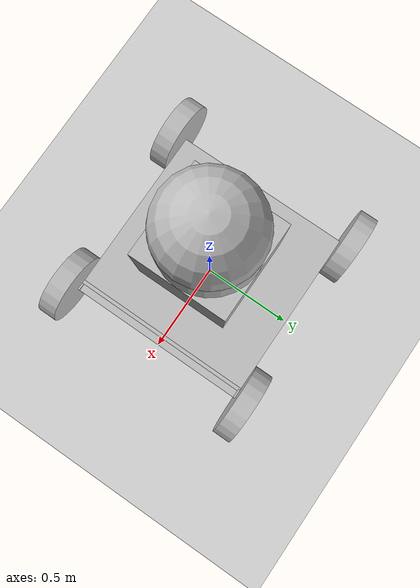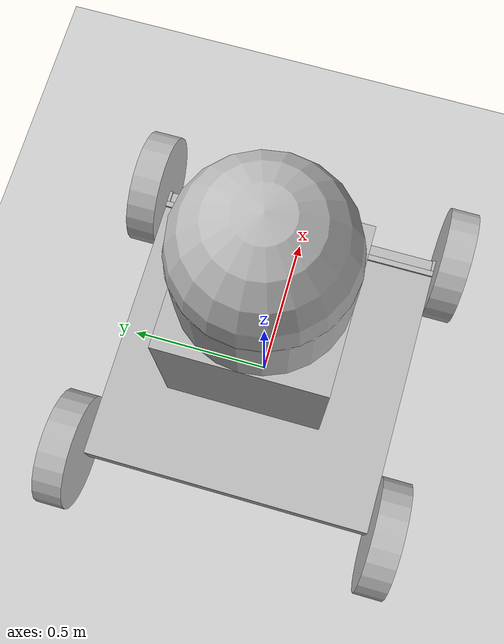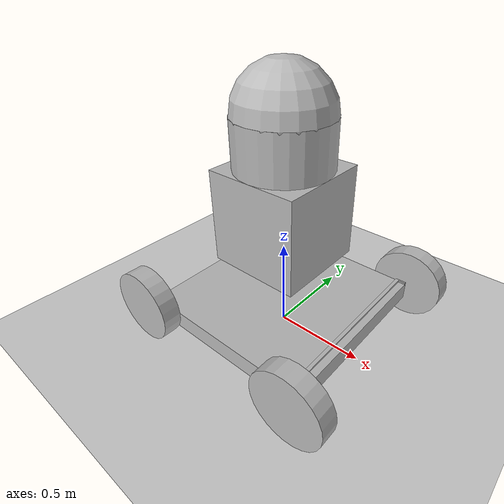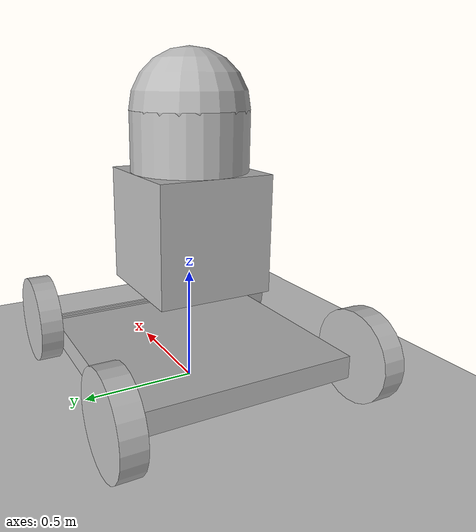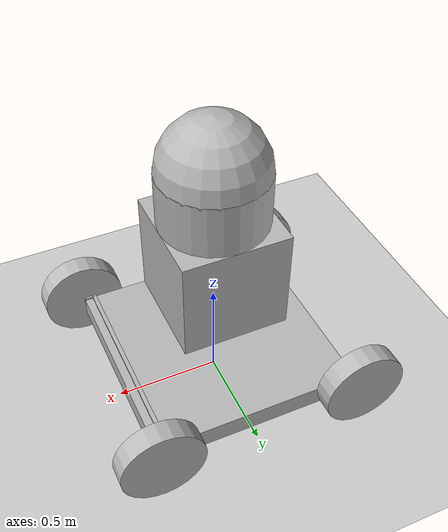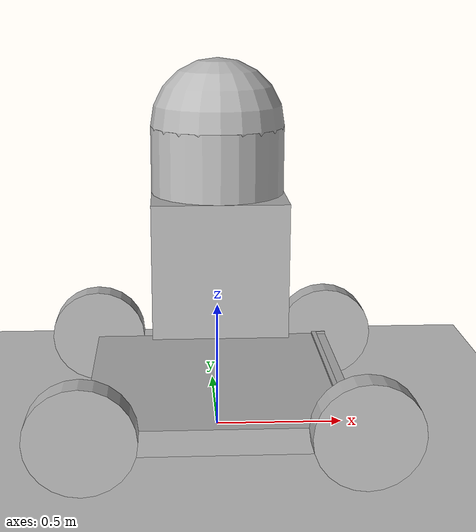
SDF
<?xml version="1.0" ?>
<sdf version="1.5">
  <world name="default">
    <physics type="ode">
      <gravity>0 0 -10.0</gravity>
      <ode>
        <solver>
          <type>quick</type>
          <iters>10</iters>
          <sor>1.3</sor>
        </solver>
        <constraints>
          <cfm>0.0</cfm>
          <erp>0.2</erp>
          <contact_max_correcting_vel>100.0</contact_max_correcting_vel>
          <contact_surface_layer>0.0</contact_surface_layer>
        </constraints>
      </ode>
      <max_step_size>0.001</max_step_size>
    </physics>
    <include>
      <uri>model://ground_plane</uri>
    </include>
    <!-- 25.3kg total mass -->
    <model name="test_model">
      <pose>0 0 0.7 0 0 0</pose>
      <link name="link">
        <inertial>
          <inertia>
            <ixx>1</ixx>
            <ixy>0</ixy>
            <ixz>0</ixz>
            <iyy>1</iyy>
            <iyz>0</iyz>
            <izz>1</izz>
          </inertia>
          <mass>1.0</mass>
        </inertial>
        <collision name="collision">
          <pose>0 0 -0.55 0 0 0</pose>
          <geometry>
            <box>
              <size>1 1 0.1</size>
            </box>
          </geometry>
          <surface>
            <friction>
              <ode>
                <mu>1</mu>
                <mu2>1</mu2>
              </ode>
            </friction>
            <contact>
              <ode>
                <max_vel>100</max_vel>
              </ode>
            </contact>
          </surface>
        </collision>
        <visual name="visual">
          <pose>0 0 -0.55 0 0 0</pose>
          <geometry>
            <box>
              <size>1 1 0.1</size>
            </box>
          </geometry>
          <material>
            <script>Gazebo/WoodPallet</script>
          </material>
        </visual>
        <collision name="collision2">
          <pose>0 0 0 0 0 0</pose>
          <geometry>
            <box>
              <size>0.5 0.5 0.5</size>
            </box>
          </geometry>
          <surface>
            <friction>
              <ode>
                <mu>1</mu>
                <mu2>1</mu2>
              </ode>
            </friction>
            <contact>
              <ode>
                <max_vel>100</max_vel>
              </ode>
            </contact>
          </surface>
        </collision>
        <visual name="visual2">
          <pose>0 0 0 0 0 0</pose>
          <geometry>
            <box>
              <size>0.5 0.5 0.5</size>
            </box>
          </geometry>
          <material>
            <script>Gazebo/WoodPallet</script>
          </material>
        </visual>
      </link>
      <link name="bar_1">
        <pose>0.45 0 -0.5 0 0 0</pose>
        <inertial>
          <inertia>
            <ixx>0.001</ixx>
            <ixy>0</ixy>
            <ixz>0</ixz>
            <iyy>0.001</iyy>
            <iyz>0</iyz>
            <izz>0.001</izz>
          </inertia>
          <mass>0.1</mass>
        </inertial>
        <collision name="collision">
          <geometry>
            <box>
              <size>0.02 1.0 0.02</size>
            </box>
          </geometry>
          <surface>
            <friction>
              <ode>
                <mu>1</mu>
                <mu2>1</mu2>
              </ode>
            </friction>
            <contact>
              <ode>
                <max_vel>100</max_vel>
              </ode>
            </contact>
          </surface>
        </collision>
        <visual name="visual">
          <geometry>
            <box>
              <size>0.02 1.0 0.02</size>
            </box>
          </geometry>
          <material>
            <script>Gazebo/WoodPallet</script>
          </material>
        </visual>
      </link>
      <joint name="bar_12_joint" type="revolute">
        <parent>bar_2</parent>
        <child>bar_1</child>
        <pose>0 0.5 0 0 0 0</pose>
        <axis>
          <xyz>0 0 1</xyz>
          <use_parent_model_frame>true</use_parent_model_frame>
        </axis>
      </joint>
      <joint name="bar_13_joint" type="revolute">
        <parent>bar_3</parent>
        <child>bar_1</child>
        <pose>0 -0.5 0 0 0 0</pose>
        <axis>
          <xyz>0 0 1</xyz>
          <use_parent_model_frame>true</use_parent_model_frame>
        </axis>
      </joint>
      <link name="bar_2">
        <pose>0.5 0.5 -0.5 0 0 0</pose>
        <inertial>
          <inertia>
            <ixx>0.001</ixx>
            <ixy>0</ixy>
            <ixz>0</ixz>
            <iyy>0.001</iyy>
            <iyz>0</iyz>
            <izz>0.001</izz>
          </inertia>
          <mass>0.1</mass>
        </inertial>
        <collision name="collision">
          <pose>-0.025 0 0 0 0 0</pose>
          <geometry>
            <box>
              <size>0.05 0.02 0.02</size>
            </box>
          </geometry>
          <surface>
            <friction>
              <ode>
                <mu>1</mu>
                <mu2>1</mu2>
              </ode>
            </friction>
            <contact>
              <ode>
                <max_vel>100</max_vel>
              </ode>
            </contact>
          </surface>
        </collision>
        <visual name="visual">
          <pose>-0.025 0 0 0 0 0</pose>
          <geometry>
            <box>
              <size>0.05 0.02 0.02</size>
            </box>
          </geometry>
          <material>
            <script>Gazebo/WoodPallet</script>
          </material>
        </visual>
      </link>
      <joint name="bar_2_joint" type="revolute">
        <parent>link</parent>
        <child>bar_2</child>
        <pose>0 0 0 0 0 0</pose>
        <axis>
          <xyz>0 0 1</xyz>
          <use_parent_model_frame>true</use_parent_model_frame>
        </axis>
      </joint>
      <link name="bar_3">
        <pose>0.5 -0.5 -0.5 0 0 0</pose>
        <inertial>
          <inertia>
            <ixx>0.001</ixx>
            <ixy>0</ixy>
            <ixz>0</ixz>
            <iyy>0.001</iyy>
            <iyz>0</iyz>
            <izz>0.001</izz>
          </inertia>
          <mass>0.1</mass>
        </inertial>
        <collision name="collision">
          <pose>-0.025 0 0 0 0 0</pose>
          <geometry>
            <box>
              <size>0.05 0.02 0.02</size>
            </box>
          </geometry>
          <surface>
            <friction>
              <ode>
                <mu>1</mu>
                <mu2>1</mu2>
              </ode>
            </friction>
            <contact>
              <ode>
                <max_vel>100</max_vel>
              </ode>
            </contact>
          </surface>
        </collision>
        <visual name="visual">
          <pose>-0.025 0 0 0 0 0</pose>
          <geometry>
            <box>
              <size>0.05 0.02 0.02</size>
            </box>
          </geometry>
          <material>
            <script>Gazebo/WoodPallet</script>
          </material>
        </visual>
      </link>
      <joint name="bar_3_joint" type="revolute">
        <parent>link</parent>
        <child>bar_3</child>
        <pose>0 0 0 0 0 0</pose>
        <axis>
          <xyz>0 0 1</xyz>
          <use_parent_model_frame>true</use_parent_model_frame>
        </axis>
      </joint>
      <link name="wheel_1">
        <pose>0.5 0.55 -0.5 1.57079633 0 0</pose>
        <inertial>
          <inertia>
            <ixx>0.01</ixx>
            <ixy>0</ixy>
            <ixz>0</ixz>
            <iyy>0.01</iyy>
            <iyz>0</iyz>
            <izz>0.01</izz>
          </inertia>
          <mass>1.0</mass>
        </inertial>
        <collision name="collision">
          <geometry>
            <cylinder>
              <radius>0.2</radius>
              <length>0.1</length>
            </cylinder>
          </geometry>
          <surface>
            <friction>
              <ode>
                <fdir1>1 0 0</fdir1>
                <mu>1</mu>
                <mu2>1</mu2>
              </ode>
            </friction>
            <contact>
              <ode>
                <max_vel>100</max_vel>
              </ode>
            </contact>
          </surface>
        </collision>
        <visual name="visual">
          <geometry>
            <cylinder>
              <radius>0.2</radius>
              <length>0.1</length>
            </cylinder>
          </geometry>
          <material>
            <script>Gazebo/WoodPallet</script>
          </material>
        </visual>
      </link>
      <joint name="wheel_1_joint" type="revolute">
        <parent>bar_2</parent>
        <child>wheel_1</child>
        <pose>0 0 0 0 0 0</pose>
        <axis>
          <xyz>0 1 0</xyz>
          <use_parent_model_frame>true</use_parent_model_frame>
        </axis>
      </joint>
      <link name="wheel_2">
        <pose>0.5 -0.55 -0.5 1.57079633 0 0</pose>
        <inertial>
          <inertia>
            <ixx>0.01</ixx>
            <ixy>0</ixy>
            <ixz>0</ixz>
            <iyy>0.01</iyy>
            <iyz>0</iyz>
            <izz>0.01</izz>
          </inertia>
          <mass>1.0</mass>
        </inertial>
        <collision name="collision">
          <geometry>
            <cylinder>
              <radius>0.2</radius>
              <length>0.1</length>
            </cylinder>
          </geometry>
          <surface>
            <friction>
              <ode>
                <fdir1>1 0 0</fdir1>
                <mu>1</mu>
                <mu2>1</mu2>
              </ode>
            </friction>
            <contact>
              <ode>
                <max_vel>100</max_vel>
              </ode>
            </contact>
          </surface>
        </collision>
        <visual name="visual">
          <geometry>
            <cylinder>
              <radius>0.2</radius>
              <length>0.1</length>
            </cylinder>
          </geometry>
          <material>
            <script>Gazebo/WoodPallet</script>
          </material>
        </visual>
      </link>
      <joint name="wheel_2_joint" type="revolute">
        <parent>bar_3</parent>
        <child>wheel_2</child>
        <pose>0 0 0 0 0 0</pose>
        <axis>
          <xyz>0 1 0</xyz>
          <use_parent_model_frame>true</use_parent_model_frame>
        </axis>
      </joint>
      <link name="wheel_3">
        <pose>-0.5 0.55 -0.5 1.57079633 0 0</pose>
        <inertial>
          <inertia>
            <ixx>0.01</ixx>
            <ixy>0</ixy>
            <ixz>0</ixz>
            <iyy>0.01</iyy>
            <iyz>0</iyz>
            <izz>0.01</izz>
          </inertia>
          <mass>1.0</mass>
        </inertial>
        <collision name="collision">
          <geometry>
            <cylinder>
              <radius>0.2</radius>
              <length>0.1</length>
            </cylinder>
          </geometry>
          <surface>
            <friction>
              <ode>
                <fdir1>1 0 0</fdir1>
                <mu>1</mu>
                <mu2>1</mu2>
              </ode>
            </friction>
            <contact>
              <ode>
                <max_vel>100</max_vel>
              </ode>
            </contact>
          </surface>
        </collision>
        <visual name="visual">
          <geometry>
            <cylinder>
              <radius>0.2</radius>
              <length>0.1</length>
            </cylinder>
          </geometry>
          <material>
            <script>Gazebo/WoodPallet</script>
          </material>
        </visual>
      </link>
      <joint name="wheel_3_joint" type="revolute">
        <parent>link</parent>
        <child>wheel_3</child>
        <pose>0 0 0 0 0 0</pose>
        <axis>
          <dynamics>
            <damping>0.0</damping>
            <friction>0.0</friction>
          </dynamics>
          <xyz>0 1 0</xyz>
          <use_parent_model_frame>true</use_parent_model_frame>
        </axis>
      </joint>
      <link name="wheel_4">
        <pose>-0.5 -0.55 -0.5 1.57079633 0 0</pose>
        <inertial>
          <inertia>
            <ixx>0.01</ixx>
            <ixy>0</ixy>
            <ixz>0</ixz>
            <iyy>0.01</iyy>
            <iyz>0</iyz>
            <izz>0.01</izz>
          </inertia>
          <mass>1.0</mass>
        </inertial>
        <collision name="collision">
          <geometry>
            <cylinder>
              <radius>0.2</radius>
              <length>0.1</length>
            </cylinder>
          </geometry>
          <surface>
            <friction>
              <ode>
                <fdir1>1 0 0</fdir1>
                <mu>1</mu>
                <mu2>1</mu2>
              </ode>
            </friction>
            <contact>
              <ode>
                <max_vel>100</max_vel>
              </ode>
            </contact>
          </surface>
        </collision>
        <visual name="visual">
          <geometry>
            <cylinder>
              <radius>0.2</radius>
              <length>0.1</length>
            </cylinder>
          </geometry>
          <material>
            <script>Gazebo/WoodPallet</script>
          </material>
        </visual>
      </link>
      <joint name="wheel_4_joint" type="revolute">
        <parent>link</parent>
        <child>wheel_4</child>
        <pose>0 0 0 0 0 0</pose>
        <axis>
          <dynamics>
            <damping>0.0</damping>
            <friction>0.0</friction>
          </dynamics>
          <xyz>0 1 0</xyz>
          <use_parent_model_frame>true</use_parent_model_frame>
        </axis>
      </joint>
      <link name="sphere_link">
        <pose>0 0 0.5 0 0 0</pose>
        <inertial>
          <inertia>
            <ixx>0.1</ixx>
            <ixy>0</ixy>
            <ixz>0</ixz>
            <iyy>0.1</iyy>
            <iyz>0</iyz>
            <izz>0.1</izz>
          </inertia>
          <mass>10.0</mass>
        </inertial>
        <collision name="collision">
          <geometry>
            <sphere>
              <radius>0.25</radius>
            </sphere>
          </geometry>
          <surface>
            <friction>
              <ode>
                <fdir1>1 0 0</fdir1>
                <mu>1</mu>
                <mu2>1</mu2>
              </ode>
            </friction>
            <contact>
              <ode>
                <max_vel>10</max_vel>
              </ode>
            </contact>
          </surface>
        </collision>
        <visual name="visual">
          <geometry>
            <sphere>
              <radius>0.25</radius>
            </sphere>
          </geometry>
          <material>
            <script>Gazebo/WoodPallet</script>
          </material>
        </visual>
      </link>
      <joint name="joint_sphere" type="revolute">
        <parent>link</parent>
        <child>sphere_link</child>
        <pose>0 0 0 0 0 0</pose>
        <axis>
          <xyz>0 0 1</xyz>
          <use_parent_model_frame>true</use_parent_model_frame>
        </axis>
      </joint>
      <link name="cylinder_link">
        <pose>0 0 0.25 0 0 0</pose>
        <inertial>
          <inertia>
            <ixx>0.1</ixx>
            <ixy>0</ixy>
            <ixz>0</ixz>
            <iyy>0.1</iyy>
            <iyz>0</iyz>
            <izz>0.1</izz>
          </inertia>
          <mass>10.0</mass>
        </inertial>
        <collision name="collision">
          <geometry>
            <cylinder>
              <radius>0.25</radius>
              <length>0.5</length>
            </cylinder>
          </geometry>
          <surface>
            <friction>
              <ode>
                <mu>1</mu>
                <mu2>1</mu2>
              </ode>
            </friction>
            <contact>
              <ode>
                <max_vel>10</max_vel>
              </ode>
            </contact>
          </surface>
        </collision>
        <visual name="visual">
          <geometry>
            <cylinder>
              <radius>0.25</radius>
              <length>0.5</length>
            </cylinder>
          </geometry>
          <material>
            <script>Gazebo/WoodPallet</script>
          </material>
        </visual>
      </link>
      <joint name="joint_cylinder" type="revolute">
        <parent>sphere_link</parent>
        <child>cylinder_link</child>
        <pose>0 0 0 0 0 0</pose>
        <axis>
          <xyz>0 0 1</xyz>
          <use_parent_model_frame>true</use_parent_model_frame>
        </axis>
      </joint>
      <plugin name="cart_test_plugin" filename="libCartDemoPlugin.so">
        <steer>bar_2_joint</steer>
        <steer_pid>10 0.1 0.5</steer_pid>
        <steer_ilim>-10 10</steer_ilim>
        <steer_pos>0.0</steer_pos>
        <!-- steer -->
        <steer_vel>0</steer_vel>
        <!-- not used -->
        <steer_eff>100.0</steer_eff>
        <!-- max pos pid effort -->
        <right>wheel_3_joint</right>
        <right_pid>0.1 0.0 0.001</right_pid>
        <right_ilim>-.1 .1</right_ilim>
        <right_pos>0</right_pos>
        <!-- final position pid -->
        <right_vel>0</right_vel>
        <!-- final velocity pid -->
        <right_eff>0.1</right_eff>
        <!-- drive torque -->
        <left>wheel_4_joint</left>
        <left_pid>0.1 0.0 0.001</left_pid>
        <left_ilim>-.1 .1</left_ilim>
        <left_pos>0</left_pos>
        <!-- final position pid -->
        <left_vel>0</left_vel>
        <!-- final velocity pid -->
        <left_eff>0.1</left_eff>
        <!-- drive torque -->
      </plugin>
    </model>
    <light type="directional" name="sun">
      <pose>0 0 10 0 0 0</pose>
      <diffuse>.8 .8 .8 1</diffuse>
      <specular>.1 .1 .1 1</specular>
      <attenuation>
        <range>10</range>
        <linear>0.01</linear>
        <constant>0.8</constant>
        <quadratic>0.0</quadratic>
      </attenuation>
      <direction>0 .5 -.5</direction>
      <cast_shadows>true</cast_shadows>
    </light>
  </world>
</sdf>
